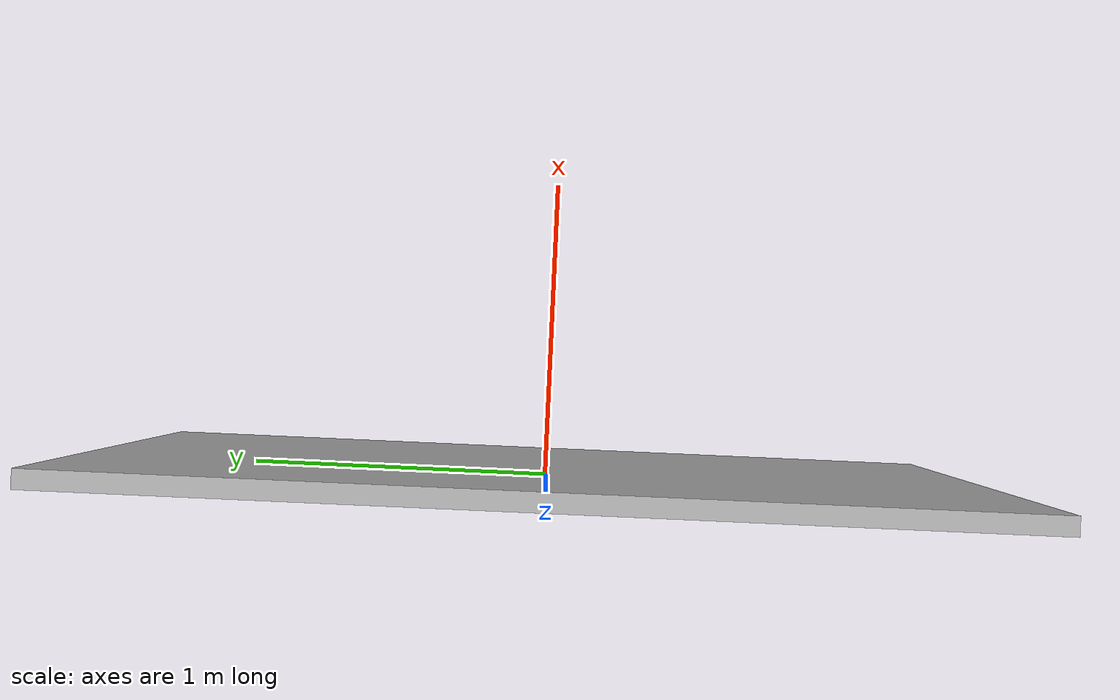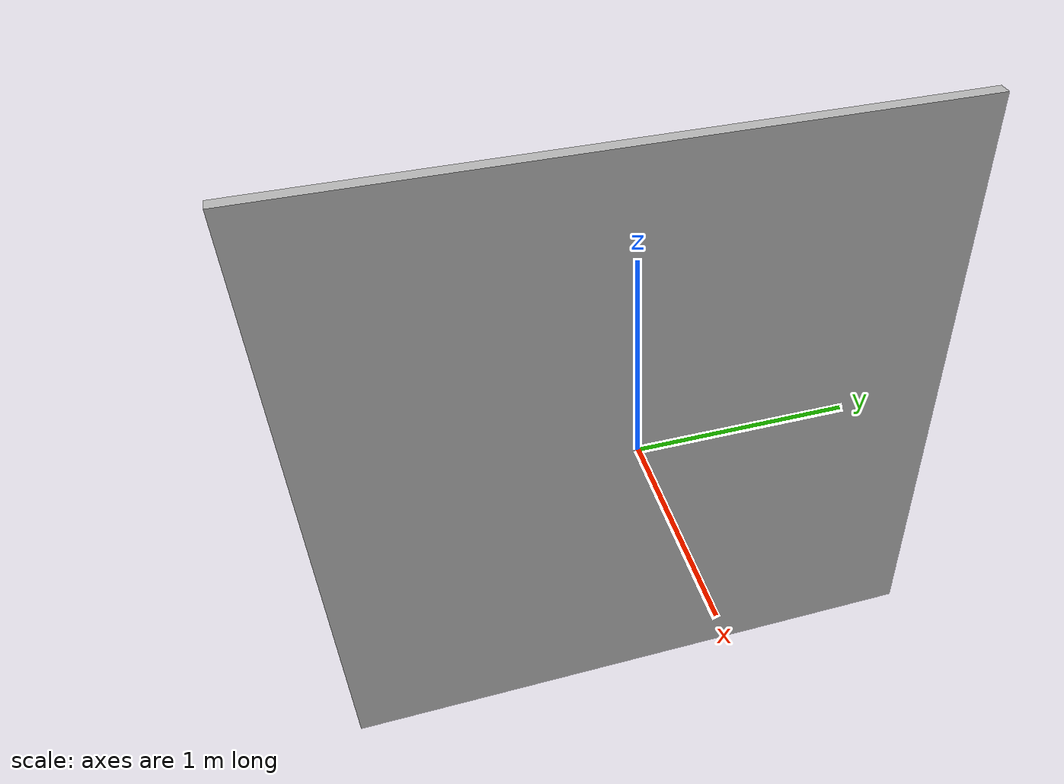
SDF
<?xml  version="1.0" ?>
<sdf version="1.5">

 <model name='april_box'>
        <static>true</static>
      <pose>0 0 0 0 -0 0</pose>
      <link name='link'>
        <inertial>
          <mass>1</mass>
          <inertia>
            <ixx>0.166667</ixx>
            <ixy>0</ixy>
            <ixz>0</ixz>
            <iyy>0.166667</iyy>
            <iyz>0</iyz>
            <izz>0.166667</izz>
          </inertia>
          <pose>0 0 0 0 -0 0</pose>
        </inertial>
        <collision name='collision'>
          <geometry>
            <box>
              <size>2 0.02 2</size>
            </box>
          </geometry>
          <surface>
            <contact>
              <ode/>
            </contact>
            <bounce/>
            <friction>
              <torsional>
                <ode/>
              </torsional>
              <ode/>
            </friction>
          </surface>
          <max_contacts>10</max_contacts>
        </collision>
        <visual name='april_box_mesh'>
          <geometry>
            <mesh>
                <uri>model://april_box/AprilBox.dae</uri>
                <scale>0.02 1 1</scale>
            </mesh>
          </geometry>
        </visual>
        <self_collide>0</self_collide>
        <enable_wind>0</enable_wind>
        <kinematic>0</kinematic>
      </link>
    </model>
    </sdf>
